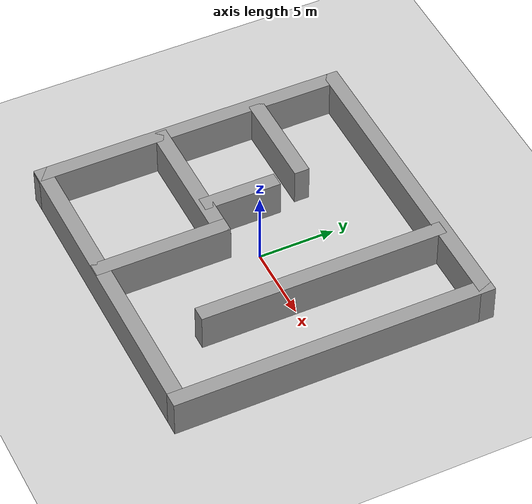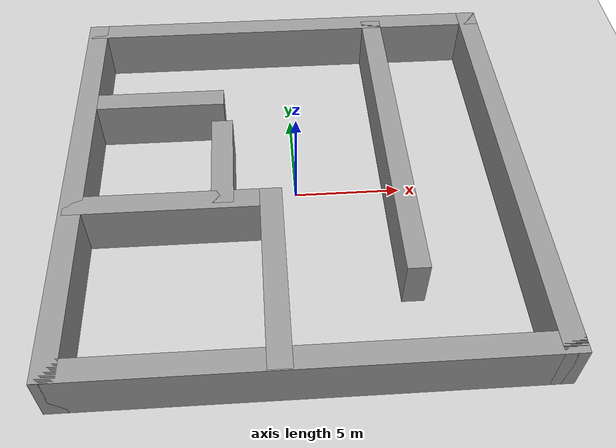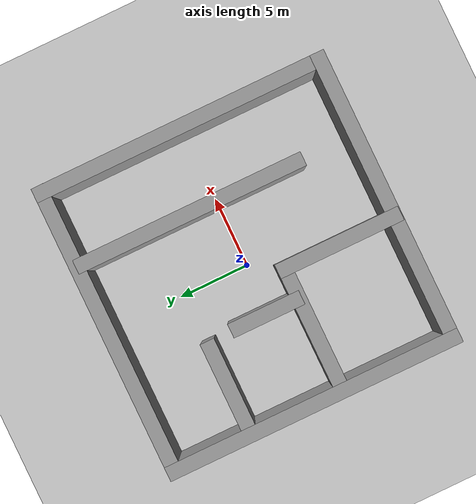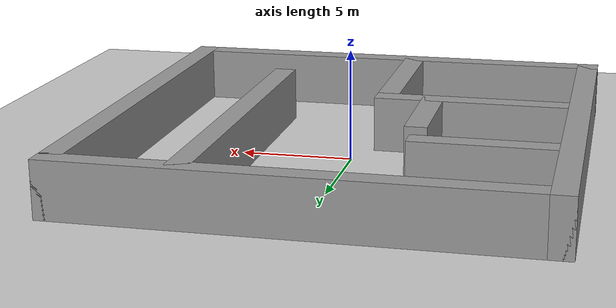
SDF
<sdf version="1.7">
 <world name="default">
  <light name="sun" type="directional">
   <pose>0 0 10 0 -0 0</pose>
   <diffuse>0.8 0.8 0.8 1</diffuse>
   <specular>0.2 0.2 0.2 1</specular>
   <attenuation>
    <range>1000</range>
    <constant>0.9</constant>
    <linear>0.01</linear>
    <quadratic>0.001</quadratic>
   </attenuation>
   <direction>-0.5 0.1 -0.9</direction>
   <spot><inner_angle>0</inner_angle><outer_angle>0</outer_angle><falloff>0</falloff></spot>
  </light>
  <model name="ground_plane">
   <static>1</static>
   <link name="link">
    <collision name="collision">
     <geometry><plane><normal>0 0 1</normal><size>100 100</size></plane></geometry>
     <surface><friction><ode><mu>100</mu><mu2>50</mu2></ode></friction></surface>
    </collision>
    <visual name="visual">
     <cast_shadows>0</cast_shadows>
     <geometry><plane><normal>0 0 1</normal><size>100 100</size></plane></geometry>
     <material>
      <script><uri>file://media/materials/scripts/gazebo.material</uri><name>Gazebo/Grey</name></script>
     </material>
    </visual>
   </link>
  </model>
  <gravity>0 0 -9.8</gravity>
  <magnetic_field>6e-06 2.3e-05 -4.2e-05</magnetic_field>
  <atmosphere type="adiabatic"/>
  <physics type="ode">
   <max_step_size>0.001</max_step_size>
   <real_time_factor>1</real_time_factor>
   <real_time_update_rate>1000</real_time_update_rate>
  </physics>
  <scene><ambient>0.4 0.4 0.4 1</ambient><background>0.7 0.7 0.7 1</background><shadows>1</shadows></scene>
  <spherical_coordinates>
   <surface_model>EARTH_WGS84</surface_model>
   <latitude_deg>0</latitude_deg>
   <longitude_deg>0</longitude_deg>
   <elevation>0</elevation>
   <heading_deg>0</heading_deg>
  </spherical_coordinates>
  <model name="demo05">
   <link name="Wall_0">
    <collision name="Wall_0_Collision">
     <geometry><box><size>21 1 2.5</size></box></geometry>
     <pose>0 0 1.25 0 -0 0</pose>
    </collision>
    <visual name="Wall_0_Visual">
     <pose>0 0 1.25 0 -0 0</pose>
     <geometry><box><size>21 1 2.5</size></box></geometry>
     <material>
      <script><uri>file://media/materials/scripts/gazebo.material</uri><name>Gazebo/Grey</name></script>
      <ambient>1 1 1 1</ambient>
     </material>
     <meta><layer>0</layer></meta>
    </visual>
    <pose>-10 0 0 0 -0 1.5708</pose>
   </link>
   <link name="Wall_10">
    <collision name="Wall_10_Collision">
     <geometry><box><size>8.84954 1 2.5</size></box></geometry>
     <pose>0 0 1.25 0 -0 0</pose>
    </collision>
    <visual name="Wall_10_Visual">
     <pose>0 0 1.25 0 -0 0</pose>
     <geometry><box><size>8.84954 1 2.5</size></box></geometry>
     <material>
      <script><uri>file://media/materials/scripts/gazebo.material</uri><name>Gazebo/Grey</name></script>
      <ambient>1 1 1 1</ambient>
     </material>
     <meta><layer>0</layer></meta>
    </visual>
    <pose>-1.235 -6.027 0 0 -0 -1.5708</pose>
   </link>
   <link name="Wall_12">
    <collision name="Wall_12_Collision">
     <geometry><box><size>16.3499 1 2.5</size></box></geometry>
     <pose>0 0 1.25 0 -0 0</pose>
    </collision>
    <visual name="Wall_12_Visual">
     <pose>0 0 1.25 0 -0 0</pose>
     <geometry><box><size>16.3499 1 2.5</size></box></geometry>
     <material>
      <script><uri>file://media/materials/scripts/gazebo.material</uri><name>Gazebo/Grey</name></script>
      <ambient>1 1 1 1</ambient>
     </material>
     <meta><layer>0</layer></meta>
    </visual>
    <pose>4.678 1.893 0 0 -0 -1.5708</pose>
   </link>
   <link name="Wall_14">
    <collision name="Wall_14_Collision">
     <geometry><box><size>6.59999 1 2.5</size></box></geometry>
     <pose>0 0 1.25 0 -0 0</pose>
    </collision>
    <visual name="Wall_14_Visual">
     <pose>0 0 1.25 0 -0 0</pose>
     <geometry><box><size>6.59999 1 2.5</size></box></geometry>
     <material>
      <script><uri>file://media/materials/scripts/gazebo.material</uri><name>Gazebo/Grey</name></script>
      <ambient>1 1 1 1</ambient>
     </material>
     <meta><layer>0</layer></meta>
    </visual>
    <pose>-6.612 4.476 0 0 -0 0</pose>
   </link>
   <link name="Wall_18">
    <collision name="Wall_18_Collision">
     <geometry><box><size>5.0996 1 2.5</size></box></geometry>
     <pose>0 0 1.25 0 -0 0</pose>
    </collision>
    <visual name="Wall_18_Visual">
     <pose>0 0 1.25 0 -0 0</pose>
     <geometry><box><size>5.0996 1 2.5</size></box></geometry>
     <material>
      <script><uri>file://media/materials/scripts/gazebo.material</uri><name>Gazebo/Grey</name></script>
      <ambient>1 1 1 1</ambient>
     </material>
     <meta><layer>0</layer></meta>
    </visual>
    <pose>-3.381 0.248 0 0 -0 1.5708</pose>
   </link>
   <link name="Wall_3">
    <collision name="Wall_3_Collision">
     <geometry><box><size>21 1 2.5</size></box></geometry>
     <pose>0 0 1.25 0 -0 0</pose>
    </collision>
    <visual name="Wall_3_Visual">
     <pose>0 0 1.25 0 -0 0</pose>
     <geometry><box><size>21 1 2.5</size></box></geometry>
     <material>
      <script><uri>file://media/materials/scripts/gazebo.material</uri><name>Gazebo/Grey</name></script>
      <ambient>1 1 1 1</ambient>
     </material>
     <meta><layer>0</layer></meta>
    </visual>
    <pose>0 -10 0 0 -0 0</pose>
   </link>
   <link name="Wall_5">
    <collision name="Wall_5_Collision">
     <geometry><box><size>21 1 2.5</size></box></geometry>
     <pose>0 0 1.25 0 -0 0</pose>
    </collision>
    <visual name="Wall_5_Visual">
     <pose>0 0 1.25 0 -0 0</pose>
     <geometry><box><size>21 1 2.5</size></box></geometry>
     <material>
      <script><uri>file://media/materials/scripts/gazebo.material</uri><name>Gazebo/Grey</name></script>
      <ambient>1 1 1 1</ambient>
     </material>
     <meta><layer>0</layer></meta>
    </visual>
    <pose>10 0 0 0 -0 1.5708</pose>
   </link>
   <link name="Wall_7">
    <collision name="Wall_7_Collision">
     <geometry><box><size>21 1 2.5</size></box></geometry>
     <pose>0 0 1.25 0 -0 0</pose>
    </collision>
    <visual name="Wall_7_Visual">
     <pose>0 0 1.25 0 -0 0</pose>
     <geometry><box><size>21 1 2.5</size></box></geometry>
     <material>
      <script><uri>file://media/materials/scripts/gazebo.material</uri><name>Gazebo/Grey</name></script>
      <ambient>1 1 1 1</ambient>
     </material>
     <meta><layer>0</layer></meta>
    </visual>
    <pose>0 10 0 0 -0 0</pose>
   </link>
   <link name="Wall_9">
    <collision name="Wall_9_Collision">
     <geometry><box><size>9.6 1 2.5</size></box></geometry>
     <pose>0 0 1.25 0 -0 0</pose>
    </collision>
    <visual name="Wall_9_Visual">
     <pose>0 0 1.25 0 -0 0</pose>
     <geometry><box><size>9.6 1 2.5</size></box></geometry>
     <material>
      <script><uri>file://media/materials/scripts/gazebo.material</uri><name>Gazebo/Grey</name></script>
      <ambient>1 1 1 1</ambient>
     </material>
     <meta><layer>0</layer></meta>
    </visual>
    <pose>-5.535 -2.102 0 0 -0 0</pose>
   </link>
   <static>1</static>
  </model>
 </world>
</sdf>
